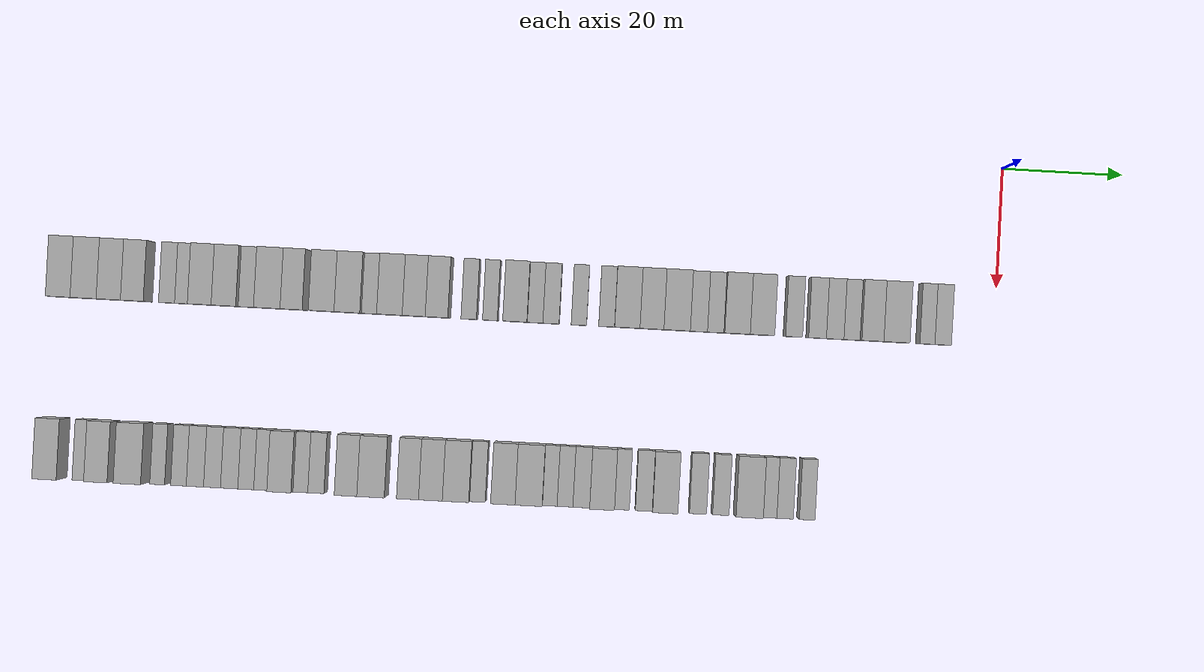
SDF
<sdf version="1.6">
 <world name="default">
  <model name="building_74">
   <static>1</static>
   <pose>25.0000 -154.6725 0 0.000000 0.000000 0.000000</pose>
   <link name="link">
    <pose>0 0 4.50 0 0 0</pose>
    <collision name="collision"><geometry><box><size>10.0000 4.0544 9.0000</size></box></geometry></collision>
    <visual name="visual">
     <cast_shadows>0</cast_shadows>
     <geometry><box><size>10.0000 4.0544 9.0000</size></box></geometry>
     <material>
      <script>
       <uri>model://HANNAS_wall/materials/scripts</uri>
       <uri>model://HANNAS_wall/materials/textures</uri>
       <name>vrc/HANNAS_wall</name>
      </script>
     </material>
    </visual>
   </link>
  </model>
  <model name="building_75">
   <static>1</static>
   <pose>25.0000 -150.5041 0 0.000000 0.000000 0.000000</pose>
   <link name="link">
    <pose>0 0 4.50 0 0 0</pose>
    <collision name="collision"><geometry><box><size>10.0000 4.2825 9.0000</size></box></geometry></collision>
    <visual name="visual">
     <cast_shadows>0</cast_shadows>
     <geometry><box><size>10.0000 4.2825 9.0000</size></box></geometry>
     <material>
      <script>
       <uri>model://HANNAS_wall/materials/scripts</uri>
       <uri>model://HANNAS_wall/materials/textures</uri>
       <name>vrc/HANNAS_wall</name>
      </script>
     </material>
    </visual>
   </link>
  </model>
  <model name="building_76">
   <static>1</static>
   <pose>25.0000 -146.3765 0 0.000000 0.000000 0.000000</pose>
   <link name="link">
    <pose>0 0 4.50 0 0 0</pose>
    <collision name="collision"><geometry><box><size>10.0000 3.9727 9.0000</size></box></geometry></collision>
    <visual name="visual">
     <cast_shadows>0</cast_shadows>
     <geometry><box><size>10.0000 3.9727 9.0000</size></box></geometry>
     <material>
      <script>
       <uri>model://HANNAS_wall/materials/scripts</uri>
       <uri>model://HANNAS_wall/materials/textures</uri>
       <name>vrc/HANNAS_wall</name>
      </script>
     </material>
    </visual>
   </link>
  </model>
  <model name="building_77">
   <static>1</static>
   <pose>25.0000 -142.5174 0 0.000000 0.000000 0.000000</pose>
   <link name="link">
    <pose>0 0 4.50 0 0 0</pose>
    <collision name="collision"><geometry><box><size>10.0000 3.7454 9.0000</size></box></geometry></collision>
    <visual name="visual">
     <cast_shadows>0</cast_shadows>
     <geometry><box><size>10.0000 3.7454 9.0000</size></box></geometry>
     <material>
      <script>
       <uri>model://HANNAS_wall/materials/scripts</uri>
       <uri>model://HANNAS_wall/materials/textures</uri>
       <name>vrc/HANNAS_wall</name>
      </script>
     </material>
    </visual>
   </link>
  </model>
  <model name="building_78">
   <static>1</static>
   <pose>25.0000 -137.3174 0 0.000000 0.000000 0.000000</pose>
   <link name="link">
    <pose>0 0 3.00 0 0 0</pose>
    <collision name="collision"><geometry><box><size>10.0000 2.6546 6.0000</size></box></geometry></collision>
    <visual name="visual">
     <cast_shadows>0</cast_shadows>
     <geometry><box><size>10.0000 2.6546 6.0000</size></box></geometry>
     <material>
      <script>
       <uri>model://HANNAS_wall/materials/scripts</uri>
       <uri>model://HANNAS_wall/materials/textures</uri>
       <name>vrc/HANNAS_wall</name>
      </script>
     </material>
    </visual>
   </link>
  </model>
  <model name="building_79">
   <static>1</static>
   <pose>25.0000 -134.7033 0 0.000000 0.000000 0.000000</pose>
   <link name="link">
    <pose>0 0 3.00 0 0 0</pose>
    <collision name="collision"><geometry><box><size>10.0000 2.5735 6.0000</size></box></geometry></collision>
    <visual name="visual">
     <cast_shadows>0</cast_shadows>
     <geometry><box><size>10.0000 2.5735 6.0000</size></box></geometry>
     <material>
      <script>
       <uri>model://HANNAS_wall/materials/scripts</uri>
       <uri>model://HANNAS_wall/materials/textures</uri>
       <name>vrc/HANNAS_wall</name>
      </script>
     </material>
    </visual>
   </link>
  </model>
  <model name="building_80">
   <static>1</static>
   <pose>25.0000 -131.4703 0 0.000000 0.000000 0.000000</pose>
   <link name="link">
    <pose>0 0 4.50 0 0 0</pose>
    <collision name="collision"><geometry><box><size>10.0000 3.8925 9.0000</size></box></geometry></collision>
    <visual name="visual">
     <cast_shadows>0</cast_shadows>
     <geometry><box><size>10.0000 3.8925 9.0000</size></box></geometry>
     <material>
      <script>
       <uri>model://HANNAS_wall/materials/scripts</uri>
       <uri>model://HANNAS_wall/materials/textures</uri>
       <name>vrc/HANNAS_wall</name>
      </script>
     </material>
    </visual>
   </link>
  </model>
  <model name="building_81">
   <static>1</static>
   <pose>25.0000 -127.5075 0 0.000000 0.000000 0.000000</pose>
   <link name="link">
    <pose>0 0 4.50 0 0 0</pose>
    <collision name="collision"><geometry><box><size>10.0000 4.0332 9.0000</size></box></geometry></collision>
    <visual name="visual">
     <cast_shadows>0</cast_shadows>
     <geometry><box><size>10.0000 4.0332 9.0000</size></box></geometry>
     <material>
      <script>
       <uri>model://HANNAS_wall/materials/scripts</uri>
       <uri>model://HANNAS_wall/materials/textures</uri>
       <name>vrc/HANNAS_wall</name>
      </script>
     </material>
    </visual>
   </link>
  </model>
  <model name="building_82">
   <static>1</static>
   <pose>25.0000 -124.0322 0 0.000000 0.000000 0.000000</pose>
   <link name="link">
    <pose>0 0 3.00 0 0 0</pose>
    <collision name="collision"><geometry><box><size>10.0000 2.9172 6.0000</size></box></geometry></collision>
    <visual name="visual">
     <cast_shadows>0</cast_shadows>
     <geometry><box><size>10.0000 2.9172 6.0000</size></box></geometry>
     <material>
      <script>
       <uri>model://HANNAS_wall/materials/scripts</uri>
       <uri>model://HANNAS_wall/materials/textures</uri>
       <name>vrc/HANNAS_wall</name>
      </script>
     </material>
    </visual>
   </link>
  </model>
  <model name="building_83">
   <static>1</static>
   <pose>25.0000 -120.3986 0 0.000000 0.000000 0.000000</pose>
   <link name="link">
    <pose>0 0 4.50 0 0 0</pose>
    <collision name="collision"><geometry><box><size>10.0000 4.3501 9.0000</size></box></geometry></collision>
    <visual name="visual">
     <cast_shadows>0</cast_shadows>
     <geometry><box><size>10.0000 4.3501 9.0000</size></box></geometry>
     <material>
      <script>
       <uri>model://HANNAS_wall/materials/scripts</uri>
       <uri>model://HANNAS_wall/materials/textures</uri>
       <name>vrc/HANNAS_wall</name>
      </script>
     </material>
    </visual>
   </link>
  </model>
  <model name="building_84">
   <static>1</static>
   <pose>25.0000 -116.4097 0 0.000000 0.000000 0.000000</pose>
   <link name="link">
    <pose>0 0 4.50 0 0 0</pose>
    <collision name="collision"><geometry><box><size>10.0000 3.6276 9.0000</size></box></geometry></collision>
    <visual name="visual">
     <cast_shadows>0</cast_shadows>
     <geometry><box><size>10.0000 3.6276 9.0000</size></box></geometry>
     <material>
      <script>
       <uri>model://HANNAS_wall/materials/scripts</uri>
       <uri>model://HANNAS_wall/materials/textures</uri>
       <name>vrc/HANNAS_wall</name>
      </script>
     </material>
    </visual>
   </link>
  </model>
  <model name="building_85">
   <static>1</static>
   <pose>25.0000 -111.4879 0 0.000000 0.000000 0.000000</pose>
   <link name="link">
    <pose>0 0 4.50 0 0 0</pose>
    <collision name="collision"><geometry><box><size>10.0000 4.2160 9.0000</size></box></geometry></collision>
    <visual name="visual">
     <cast_shadows>0</cast_shadows>
     <geometry><box><size>10.0000 4.2160 9.0000</size></box></geometry>
     <material>
      <script>
       <uri>model://HANNAS_wall/materials/scripts</uri>
       <uri>model://HANNAS_wall/materials/textures</uri>
       <name>vrc/HANNAS_wall</name>
      </script>
     </material>
    </visual>
   </link>
  </model>
  <model name="building_86">
   <static>1</static>
   <pose>25.0000 -107.2674 0 0.000000 0.000000 0.000000</pose>
   <link name="link">
    <pose>0 0 4.50 0 0 0</pose>
    <collision name="collision"><geometry><box><size>10.0000 4.2251 9.0000</size></box></geometry></collision>
    <visual name="visual">
     <cast_shadows>0</cast_shadows>
     <geometry><box><size>10.0000 4.2251 9.0000</size></box></geometry>
     <material>
      <script>
       <uri>model://HANNAS_wall/materials/scripts</uri>
       <uri>model://HANNAS_wall/materials/textures</uri>
       <name>vrc/HANNAS_wall</name>
      </script>
     </material>
    </visual>
   </link>
  </model>
  <model name="building_87">
   <static>1</static>
   <pose>25.0000 -103.7765 0 0.000000 0.000000 0.000000</pose>
   <link name="link">
    <pose>0 0 3.00 0 0 0</pose>
    <collision name="collision"><geometry><box><size>10.0000 2.7565 6.0000</size></box></geometry></collision>
    <visual name="visual">
     <cast_shadows>0</cast_shadows>
     <geometry><box><size>10.0000 2.7565 6.0000</size></box></geometry>
     <material>
      <script>
       <uri>model://HANNAS_wall/materials/scripts</uri>
       <uri>model://HANNAS_wall/materials/textures</uri>
       <name>vrc/HANNAS_wall</name>
      </script>
     </material>
    </visual>
   </link>
  </model>
  <model name="building_88">
   <static>1</static>
   <pose>25.0000 -100.3007 0 0.000000 0.000000 0.000000</pose>
   <link name="link">
    <pose>0 0 4.50 0 0 0</pose>
    <collision name="collision"><geometry><box><size>10.0000 4.1952 9.0000</size></box></geometry></collision>
    <visual name="visual">
     <cast_shadows>0</cast_shadows>
     <geometry><box><size>10.0000 4.1952 9.0000</size></box></geometry>
     <material>
      <script>
       <uri>model://HANNAS_wall/materials/scripts</uri>
       <uri>model://HANNAS_wall/materials/textures</uri>
       <name>vrc/HANNAS_wall</name>
      </script>
     </material>
    </visual>
   </link>
  </model>
  <model name="building_89">
   <static>1</static>
   <pose>25.0000 -96.3168 0 0.000000 0.000000 0.000000</pose>
   <link name="link">
    <pose>0 0 4.50 0 0 0</pose>
    <collision name="collision"><geometry><box><size>10.0000 3.7726 9.0000</size></box></geometry></collision>
    <visual name="visual">
     <cast_shadows>0</cast_shadows>
     <geometry><box><size>10.0000 3.7726 9.0000</size></box></geometry>
     <material>
      <script>
       <uri>model://HANNAS_wall/materials/scripts</uri>
       <uri>model://HANNAS_wall/materials/textures</uri>
       <name>vrc/HANNAS_wall</name>
      </script>
     </material>
    </visual>
   </link>
  </model>
  <model name="building_90">
   <static>1</static>
   <pose>25.0000 -92.5763 0 0.000000 0.000000 0.000000</pose>
   <link name="link">
    <pose>0 0 4.50 0 0 0</pose>
    <collision name="collision"><geometry><box><size>10.0000 3.7083 9.0000</size></box></geometry></collision>
    <visual name="visual">
     <cast_shadows>0</cast_shadows>
     <geometry><box><size>10.0000 3.7083 9.0000</size></box></geometry>
     <material>
      <script>
       <uri>model://HANNAS_wall/materials/scripts</uri>
       <uri>model://HANNAS_wall/materials/textures</uri>
       <name>vrc/HANNAS_wall</name>
      </script>
     </material>
    </visual>
   </link>
  </model>
  <model name="building_91">
   <static>1</static>
   <pose>25.0000 -87.4404 0 0.000000 0.000000 0.000000</pose>
   <link name="link">
    <pose>0 0 3.00 0 0 0</pose>
    <collision name="collision"><geometry><box><size>10.0000 2.5635 6.0000</size></box></geometry></collision>
    <visual name="visual">
     <cast_shadows>0</cast_shadows>
     <geometry><box><size>10.0000 2.5635 6.0000</size></box></geometry>
     <material>
      <script>
       <uri>model://HANNAS_wall/materials/scripts</uri>
       <uri>model://HANNAS_wall/materials/textures</uri>
       <name>vrc/HANNAS_wall</name>
      </script>
     </material>
    </visual>
   </link>
  </model>
  <model name="building_92">
   <static>1</static>
   <pose>25.0000 -83.9411 0 0.000000 0.000000 0.000000</pose>
   <link name="link">
    <pose>0 0 3.00 0 0 0</pose>
    <collision name="collision"><geometry><box><size>10.0000 2.4352 6.0000</size></box></geometry></collision>
    <visual name="visual">
     <cast_shadows>0</cast_shadows>
     <geometry><box><size>10.0000 2.4352 6.0000</size></box></geometry>
     <material>
      <script>
       <uri>model://HANNAS_wall/materials/scripts</uri>
       <uri>model://HANNAS_wall/materials/textures</uri>
       <name>vrc/HANNAS_wall</name>
      </script>
     </material>
    </visual>
   </link>
  </model>
  <model name="building_93">
   <static>1</static>
   <pose>25.0000 -79.7384 0 0.000000 0.000000 0.000000</pose>
   <link name="link">
    <pose>0 0 4.50 0 0 0</pose>
    <collision name="collision"><geometry><box><size>10.0000 3.9701 9.0000</size></box></geometry></collision>
    <visual name="visual">
     <cast_shadows>0</cast_shadows>
     <geometry><box><size>10.0000 3.9701 9.0000</size></box></geometry>
     <material>
      <script>
       <uri>model://HANNAS_wall/materials/scripts</uri>
       <uri>model://HANNAS_wall/materials/textures</uri>
       <name>vrc/HANNAS_wall</name>
      </script>
     </material>
    </visual>
   </link>
  </model>
  <model name="building_94">
   <static>1</static>
   <pose>25.0000 -76.4728 0 0.000000 0.000000 0.000000</pose>
   <link name="link">
    <pose>0 0 3.00 0 0 0</pose>
    <collision name="collision"><geometry><box><size>10.0000 2.5611 6.0000</size></box></geometry></collision>
    <visual name="visual">
     <cast_shadows>0</cast_shadows>
     <geometry><box><size>10.0000 2.5611 6.0000</size></box></geometry>
     <material>
      <script>
       <uri>model://HANNAS_wall/materials/scripts</uri>
       <uri>model://HANNAS_wall/materials/textures</uri>
       <name>vrc/HANNAS_wall</name>
      </script>
     </material>
    </visual>
   </link>
  </model>
  <model name="building_95">
   <static>1</static>
   <pose>25.0000 -73.8569 0 0.000000 0.000000 0.000000</pose>
   <link name="link">
    <pose>0 0 3.00 0 0 0</pose>
    <collision name="collision"><geometry><box><size>10.0000 2.6707 6.0000</size></box></geometry></collision>
    <visual name="visual">
     <cast_shadows>0</cast_shadows>
     <geometry><box><size>10.0000 2.6707 6.0000</size></box></geometry>
     <material>
      <script>
       <uri>model://HANNAS_wall/materials/scripts</uri>
       <uri>model://HANNAS_wall/materials/textures</uri>
       <name>vrc/HANNAS_wall</name>
      </script>
     </material>
    </visual>
   </link>
  </model>
  <model name="building_96">
   <static>1</static>
   <pose>25.0000 -69.2499 0 0.000000 0.000000 0.000000</pose>
   <link name="link">
    <pose>0 0 3.00 0 0 0</pose>
    <collision name="collision"><geometry><box><size>10.0000 2.5434 6.0000</size></box></geometry></collision>
    <visual name="visual">
     <cast_shadows>0</cast_shadows>
     <geometry><box><size>10.0000 2.5434 6.0000</size></box></geometry>
     <material>
      <script>
       <uri>model://HANNAS_wall/materials/scripts</uri>
       <uri>model://HANNAS_wall/materials/textures</uri>
       <name>vrc/HANNAS_wall</name>
      </script>
     </material>
    </visual>
   </link>
  </model>
  <model name="building_97">
   <static>1</static>
   <pose>25.0000 -64.6692 0 0.000000 0.000000 0.000000</pose>
   <link name="link">
    <pose>0 0 3.00 0 0 0</pose>
    <collision name="collision"><geometry><box><size>10.0000 2.6179 6.0000</size></box></geometry></collision>
    <visual name="visual">
     <cast_shadows>0</cast_shadows>
     <geometry><box><size>10.0000 2.6179 6.0000</size></box></geometry>
     <material>
      <script>
       <uri>model://HANNAS_wall/materials/scripts</uri>
       <uri>model://HANNAS_wall/materials/textures</uri>
       <name>vrc/HANNAS_wall</name>
      </script>
     </material>
    </visual>
   </link>
  </model>
  <model name="building_98">
   <static>1</static>
   <pose>25.0000 -61.2834 0 0.000000 0.000000 0.000000</pose>
   <link name="link">
    <pose>0 0 4.50 0 0 0</pose>
    <collision name="collision"><geometry><box><size>10.0000 4.1539 9.0000</size></box></geometry></collision>
    <visual name="visual">
     <cast_shadows>0</cast_shadows>
     <geometry><box><size>10.0000 4.1539 9.0000</size></box></geometry>
     <material>
      <script>
       <uri>model://HANNAS_wall/materials/scripts</uri>
       <uri>model://HANNAS_wall/materials/textures</uri>
       <name>vrc/HANNAS_wall</name>
      </script>
     </material>
    </visual>
   </link>
  </model>
  <model name="building_99">
   <static>1</static>
   <pose>25.0000 -57.2449 0 0.000000 0.000000 0.000000</pose>
   <link name="link">
    <pose>0 0 4.50 0 0 0</pose>
    <collision name="collision"><geometry><box><size>10.0000 3.9230 9.0000</size></box></geometry></collision>
    <visual name="visual">
     <cast_shadows>0</cast_shadows>
     <geometry><box><size>10.0000 3.9230 9.0000</size></box></geometry>
     <material>
      <script>
       <uri>model://HANNAS_wall/materials/scripts</uri>
       <uri>model://HANNAS_wall/materials/textures</uri>
       <name>vrc/HANNAS_wall</name>
      </script>
     </material>
    </visual>
   </link>
  </model>
  <model name="building_100">
   <static>1</static>
   <pose>25.0000 -53.1180 0 0.000000 0.000000 0.000000</pose>
   <link name="link">
    <pose>0 0 4.50 0 0 0</pose>
    <collision name="collision"><geometry><box><size>10.0000 4.3308 9.0000</size></box></geometry></collision>
    <visual name="visual">
     <cast_shadows>0</cast_shadows>
     <geometry><box><size>10.0000 4.3308 9.0000</size></box></geometry>
     <material>
      <script>
       <uri>model://HANNAS_wall/materials/scripts</uri>
       <uri>model://HANNAS_wall/materials/textures</uri>
       <name>vrc/HANNAS_wall</name>
      </script>
     </material>
    </visual>
   </link>
  </model>
  <model name="building_101">
   <static>1</static>
   <pose>25.0000 -49.4828 0 0.000000 0.000000 0.000000</pose>
   <link name="link">
    <pose>0 0 3.00 0 0 0</pose>
    <collision name="collision"><geometry><box><size>10.0000 2.9397 6.0000</size></box></geometry></collision>
    <visual name="visual">
     <cast_shadows>0</cast_shadows>
     <geometry><box><size>10.0000 2.9397 6.0000</size></box></geometry>
     <material>
      <script>
       <uri>model://HANNAS_wall/materials/scripts</uri>
       <uri>model://HANNAS_wall/materials/textures</uri>
       <name>vrc/HANNAS_wall</name>
      </script>
     </material>
    </visual>
   </link>
  </model>
  <model name="building_102">
   <static>1</static>
   <pose>25.0000 -46.6566 0 0.000000 0.000000 0.000000</pose>
   <link name="link">
    <pose>0 0 3.00 0 0 0</pose>
    <collision name="collision"><geometry><box><size>10.0000 2.7127 6.0000</size></box></geometry></collision>
    <visual name="visual">
     <cast_shadows>0</cast_shadows>
     <geometry><box><size>10.0000 2.7127 6.0000</size></box></geometry>
     <material>
      <script>
       <uri>model://HANNAS_wall/materials/scripts</uri>
       <uri>model://HANNAS_wall/materials/textures</uri>
       <name>vrc/HANNAS_wall</name>
      </script>
     </material>
    </visual>
   </link>
  </model>
  <model name="building_103">
   <static>1</static>
   <pose>25.0000 -43.2125 0 0.000000 0.000000 0.000000</pose>
   <link name="link">
    <pose>0 0 4.50 0 0 0</pose>
    <collision name="collision"><geometry><box><size>10.0000 4.1756 9.0000</size></box></geometry></collision>
    <visual name="visual">
     <cast_shadows>0</cast_shadows>
     <geometry><box><size>10.0000 4.1756 9.0000</size></box></geometry>
     <material>
      <script>
       <uri>model://HANNAS_wall/materials/scripts</uri>
       <uri>model://HANNAS_wall/materials/textures</uri>
       <name>vrc/HANNAS_wall</name>
      </script>
     </material>
    </visual>
   </link>
  </model>
  <model name="building_104">
   <static>1</static>
   <pose>25.0000 -39.1202 0 0.000000 0.000000 0.000000</pose>
   <link name="link">
    <pose>0 0 4.50 0 0 0</pose>
    <collision name="collision"><geometry><box><size>10.0000 4.0090 9.0000</size></box></geometry></collision>
    <visual name="visual">
     <cast_shadows>0</cast_shadows>
     <geometry><box><size>10.0000 4.0090 9.0000</size></box></geometry>
     <material>
      <script>
       <uri>model://HANNAS_wall/materials/scripts</uri>
       <uri>model://HANNAS_wall/materials/textures</uri>
       <name>vrc/HANNAS_wall</name>
      </script>
     </material>
    </visual>
   </link>
  </model>
  <model name="building_105">
   <static>1</static>
   <pose>25.0000 -33.7152 0 0.000000 0.000000 0.000000</pose>
   <link name="link">
    <pose>0 0 3.00 0 0 0</pose>
    <collision name="collision"><geometry><box><size>10.0000 2.8009 6.0000</size></box></geometry></collision>
    <visual name="visual">
     <cast_shadows>0</cast_shadows>
     <geometry><box><size>10.0000 2.8009 6.0000</size></box></geometry>
     <material>
      <script>
       <uri>model://HANNAS_wall/materials/scripts</uri>
       <uri>model://HANNAS_wall/materials/textures</uri>
       <name>vrc/HANNAS_wall</name>
      </script>
     </material>
    </visual>
   </link>
  </model>
  <model name="building_106">
   <static>1</static>
   <pose>25.0000 -29.8492 0 0.000000 0.000000 0.000000</pose>
   <link name="link">
    <pose>0 0 3.00 0 0 0</pose>
    <collision name="collision"><geometry><box><size>10.0000 2.9313 6.0000</size></box></geometry></collision>
    <visual name="visual">
     <cast_shadows>0</cast_shadows>
     <geometry><box><size>10.0000 2.9313 6.0000</size></box></geometry>
     <material>
      <script>
       <uri>model://HANNAS_wall/materials/scripts</uri>
       <uri>model://HANNAS_wall/materials/textures</uri>
       <name>vrc/HANNAS_wall</name>
      </script>
     </material>
    </visual>
   </link>
  </model>
  <model name="building_107">
   <static>1</static>
   <pose>25.0000 -26.9336 0 0.000000 0.000000 0.000000</pose>
   <link name="link">
    <pose>0 0 3.00 0 0 0</pose>
    <collision name="collision"><geometry><box><size>10.0000 2.8999 6.0000</size></box></geometry></collision>
    <visual name="visual">
     <cast_shadows>0</cast_shadows>
     <geometry><box><size>10.0000 2.8999 6.0000</size></box></geometry>
     <material>
      <script>
       <uri>model://HANNAS_wall/materials/scripts</uri>
       <uri>model://HANNAS_wall/materials/textures</uri>
       <name>vrc/HANNAS_wall</name>
      </script>
     </material>
    </visual>
   </link>
  </model>
  <model name="building_108">
   <static>1</static>
   <pose>25.0000 -24.1535 0 0.000000 0.000000 0.000000</pose>
   <link name="link">
    <pose>0 0 3.00 0 0 0</pose>
    <collision name="collision"><geometry><box><size>10.0000 2.6601 6.0000</size></box></geometry></collision>
    <visual name="visual">
     <cast_shadows>0</cast_shadows>
     <geometry><box><size>10.0000 2.6601 6.0000</size></box></geometry>
     <material>
      <script>
       <uri>model://HANNAS_wall/materials/scripts</uri>
       <uri>model://HANNAS_wall/materials/textures</uri>
       <name>vrc/HANNAS_wall</name>
      </script>
     </material>
    </visual>
   </link>
  </model>
  <model name="building_109">
   <static>1</static>
   <pose>25.0000 -21.0219 0 0.000000 0.000000 0.000000</pose>
   <link name="link">
    <pose>0 0 4.50 0 0 0</pose>
    <collision name="collision"><geometry><box><size>10.0000 3.6032 9.0000</size></box></geometry></collision>
    <visual name="visual">
     <cast_shadows>0</cast_shadows>
     <geometry><box><size>10.0000 3.6032 9.0000</size></box></geometry>
     <material>
      <script>
       <uri>model://HANNAS_wall/materials/scripts</uri>
       <uri>model://HANNAS_wall/materials/textures</uri>
       <name>vrc/HANNAS_wall</name>
      </script>
     </material>
    </visual>
   </link>
  </model>
  <model name="building_110">
   <static>1</static>
   <pose>25.0000 -17.0821 0 0.000000 0.000000 0.000000</pose>
   <link name="link">
    <pose>0 0 4.50 0 0 0</pose>
    <collision name="collision"><geometry><box><size>10.0000 4.2763 9.0000</size></box></geometry></collision>
    <visual name="visual">
     <cast_shadows>0</cast_shadows>
     <geometry><box><size>10.0000 4.2763 9.0000</size></box></geometry>
     <material>
      <script>
       <uri>model://HANNAS_wall/materials/scripts</uri>
       <uri>model://HANNAS_wall/materials/textures</uri>
       <name>vrc/HANNAS_wall</name>
      </script>
     </material>
    </visual>
   </link>
  </model>
  <model name="building_111">
   <static>1</static>
   <pose>25.0000 -11.7085 0 0.000000 0.000000 0.000000</pose>
   <link name="link">
    <pose>0 0 3.00 0 0 0</pose>
    <collision name="collision"><geometry><box><size>10.0000 2.4709 6.0000</size></box></geometry></collision>
    <visual name="visual">
     <cast_shadows>0</cast_shadows>
     <geometry><box><size>10.0000 2.4709 6.0000</size></box></geometry>
     <material>
      <script>
       <uri>model://HANNAS_wall/materials/scripts</uri>
       <uri>model://HANNAS_wall/materials/textures</uri>
       <name>vrc/HANNAS_wall</name>
      </script>
     </material>
    </visual>
   </link>
  </model>
  <model name="building_112">
   <static>1</static>
   <pose>25.0000 -9.1122 0 0.000000 0.000000 0.000000</pose>
   <link name="link">
    <pose>0 0 3.00 0 0 0</pose>
    <collision name="collision"><geometry><box><size>10.0000 2.7218 6.0000</size></box></geometry></collision>
    <visual name="visual">
     <cast_shadows>0</cast_shadows>
     <geometry><box><size>10.0000 2.7218 6.0000</size></box></geometry>
     <material>
      <script>
       <uri>model://HANNAS_wall/materials/scripts</uri>
       <uri>model://HANNAS_wall/materials/textures</uri>
       <name>vrc/HANNAS_wall</name>
      </script>
     </material>
    </visual>
   </link>
  </model>
  <model name="building_303">
   <static>1</static>
   <pose>55.0000 -155.2801 0 0.000000 0.000000 0.000000</pose>
   <link name="link">
    <pose>0 0 4.50 0 0 0</pose>
    <collision name="collision"><geometry><box><size>10.0000 3.9959 9.0000</size></box></geometry></collision>
    <visual name="visual">
     <cast_shadows>0</cast_shadows>
     <geometry><box><size>10.0000 3.9959 9.0000</size></box></geometry>
     <material>
      <script>
       <uri>model://HANNAS_wall/materials/scripts</uri>
       <uri>model://HANNAS_wall/materials/textures</uri>
       <name>vrc/HANNAS_wall</name>
      </script>
     </material>
    </visual>
   </link>
  </model>
  <model name="building_304">
   <static>1</static>
   <pose>55.0000 -150.0310 0 0.000000 0.000000 0.000000</pose>
   <link name="link">
    <pose>0 0 3.00 0 0 0</pose>
    <collision name="collision"><geometry><box><size>10.0000 2.5023 6.0000</size></box></geometry></collision>
    <visual name="visual">
     <cast_shadows>0</cast_shadows>
     <geometry><box><size>10.0000 2.5023 6.0000</size></box></geometry>
     <material>
      <script>
       <uri>model://HANNAS_wall/materials/scripts</uri>
       <uri>model://HANNAS_wall/materials/textures</uri>
       <name>vrc/HANNAS_wall</name>
      </script>
     </material>
    </visual>
   </link>
  </model>
  <model name="building_305">
   <static>1</static>
   <pose>55.0000 -146.8574 0 0.000000 0.000000 0.000000</pose>
   <link name="link">
    <pose>0 0 4.50 0 0 0</pose>
    <collision name="collision"><geometry><box><size>10.0000 3.8450 9.0000</size></box></geometry></collision>
    <visual name="visual">
     <cast_shadows>0</cast_shadows>
     <geometry><box><size>10.0000 3.8450 9.0000</size></box></geometry>
     <material>
      <script>
       <uri>model://HANNAS_wall/materials/scripts</uri>
       <uri>model://HANNAS_wall/materials/textures</uri>
       <name>vrc/HANNAS_wall</name>
      </script>
     </material>
    </visual>
   </link>
  </model>
  <model name="building_306">
   <static>1</static>
   <pose>55.0000 -141.6898 0 0.000000 0.000000 0.000000</pose>
   <link name="link">
    <pose>0 0 4.50 0 0 0</pose>
    <collision name="collision"><geometry><box><size>10.0000 4.4900 9.0000</size></box></geometry></collision>
    <visual name="visual">
     <cast_shadows>0</cast_shadows>
     <geometry><box><size>10.0000 4.4900 9.0000</size></box></geometry>
     <material>
      <script>
       <uri>model://HANNAS_wall/materials/scripts</uri>
       <uri>model://HANNAS_wall/materials/textures</uri>
       <name>vrc/HANNAS_wall</name>
      </script>
     </material>
    </visual>
   </link>
  </model>
  <model name="building_307">
   <static>1</static>
   <pose>55.0000 -137.2203 0 0.000000 0.000000 0.000000</pose>
   <link name="link">
    <pose>0 0 3.00 0 0 0</pose>
    <collision name="collision"><geometry><box><size>10.0000 2.4489 6.0000</size></box></geometry></collision>
    <visual name="visual">
     <cast_shadows>0</cast_shadows>
     <geometry><box><size>10.0000 2.4489 6.0000</size></box></geometry>
     <material>
      <script>
       <uri>model://HANNAS_wall/materials/scripts</uri>
       <uri>model://HANNAS_wall/materials/textures</uri>
       <name>vrc/HANNAS_wall</name>
      </script>
     </material>
    </visual>
   </link>
  </model>
  <model name="building_308">
   <static>1</static>
   <pose>55.0000 -133.7110 0 0.000000 0.000000 0.000000</pose>
   <link name="link">
    <pose>0 0 3.00 0 0 0</pose>
    <collision name="collision"><geometry><box><size>10.0000 2.5697 6.0000</size></box></geometry></collision>
    <visual name="visual">
     <cast_shadows>0</cast_shadows>
     <geometry><box><size>10.0000 2.5697 6.0000</size></box></geometry>
     <material>
      <script>
       <uri>model://HANNAS_wall/materials/scripts</uri>
       <uri>model://HANNAS_wall/materials/textures</uri>
       <name>vrc/HANNAS_wall</name>
      </script>
     </material>
    </visual>
   </link>
  </model>
  <model name="building_309">
   <static>1</static>
   <pose>55.0000 -130.9970 0 0.000000 0.000000 0.000000</pose>
   <link name="link">
    <pose>0 0 3.00 0 0 0</pose>
    <collision name="collision"><geometry><box><size>10.0000 2.8583 6.0000</size></box></geometry></collision>
    <visual name="visual">
     <cast_shadows>0</cast_shadows>
     <geometry><box><size>10.0000 2.8583 6.0000</size></box></geometry>
     <material>
      <script>
       <uri>model://HANNAS_wall/materials/scripts</uri>
       <uri>model://HANNAS_wall/materials/textures</uri>
       <name>vrc/HANNAS_wall</name>
      </script>
     </material>
    </visual>
   </link>
  </model>
  <model name="building_310">
   <static>1</static>
   <pose>55.0000 -128.1721 0 0.000000 0.000000 0.000000</pose>
   <link name="link">
    <pose>0 0 3.00 0 0 0</pose>
    <collision name="collision"><geometry><box><size>10.0000 2.7915 6.0000</size></box></geometry></collision>
    <visual name="visual">
     <cast_shadows>0</cast_shadows>
     <geometry><box><size>10.0000 2.7915 6.0000</size></box></geometry>
     <material>
      <script>
       <uri>model://HANNAS_wall/materials/scripts</uri>
       <uri>model://HANNAS_wall/materials/textures</uri>
       <name>vrc/HANNAS_wall</name>
      </script>
     </material>
    </visual>
   </link>
  </model>
  <model name="building_311">
   <static>1</static>
   <pose>55.0000 -125.3447 0 0.000000 0.000000 0.000000</pose>
   <link name="link">
    <pose>0 0 3.00 0 0 0</pose>
    <collision name="collision"><geometry><box><size>10.0000 2.8634 6.0000</size></box></geometry></collision>
    <visual name="visual">
     <cast_shadows>0</cast_shadows>
     <geometry><box><size>10.0000 2.8634 6.0000</size></box></geometry>
     <material>
      <script>
       <uri>model://HANNAS_wall/materials/scripts</uri>
       <uri>model://HANNAS_wall/materials/textures</uri>
       <name>vrc/HANNAS_wall</name>
      </script>
     </material>
    </visual>
   </link>
  </model>
  <model name="building_312">
   <static>1</static>
   <pose>55.0000 -122.5998 0 0.000000 0.000000 0.000000</pose>
   <link name="link">
    <pose>0 0 3.00 0 0 0</pose>
    <collision name="collision"><geometry><box><size>10.0000 2.6263 6.0000</size></box></geometry></collision>
    <visual name="visual">
     <cast_shadows>0</cast_shadows>
     <geometry><box><size>10.0000 2.6263 6.0000</size></box></geometry>
     <material>
      <script>
       <uri>model://HANNAS_wall/materials/scripts</uri>
       <uri>model://HANNAS_wall/materials/textures</uri>
       <name>vrc/HANNAS_wall</name>
      </script>
     </material>
    </visual>
   </link>
  </model>
  <model name="building_313">
   <static>1</static>
   <pose>55.0000 -120.0176 0 0.000000 0.000000 0.000000</pose>
   <link name="link">
    <pose>0 0 3.00 0 0 0</pose>
    <collision name="collision"><geometry><box><size>10.0000 2.5381 6.0000</size></box></geometry></collision>
    <visual name="visual">
     <cast_shadows>0</cast_shadows>
     <geometry><box><size>10.0000 2.5381 6.0000</size></box></geometry>
     <material>
      <script>
       <uri>model://HANNAS_wall/materials/scripts</uri>
       <uri>model://HANNAS_wall/materials/textures</uri>
       <name>vrc/HANNAS_wall</name>
      </script>
     </material>
    </visual>
   </link>
  </model>
  <model name="building_314">
   <static>1</static>
   <pose>55.0000 -116.7766 0 0.000000 0.000000 0.000000</pose>
   <link name="link">
    <pose>0 0 4.50 0 0 0</pose>
    <collision name="collision"><geometry><box><size>10.0000 3.9439 9.0000</size></box></geometry></collision>
    <visual name="visual">
     <cast_shadows>0</cast_shadows>
     <geometry><box><size>10.0000 3.9439 9.0000</size></box></geometry>
     <material>
      <script>
       <uri>model://HANNAS_wall/materials/scripts</uri>
       <uri>model://HANNAS_wall/materials/textures</uri>
       <name>vrc/HANNAS_wall</name>
      </script>
     </material>
    </visual>
   </link>
  </model>
  <model name="building_315">
   <static>1</static>
   <pose>55.0000 -113.5862 0 0.000000 0.000000 0.000000</pose>
   <link name="link">
    <pose>0 0 3.00 0 0 0</pose>
    <collision name="collision"><geometry><box><size>10.0000 2.4369 6.0000</size></box></geometry></collision>
    <visual name="visual">
     <cast_shadows>0</cast_shadows>
     <geometry><box><size>10.0000 2.4369 6.0000</size></box></geometry>
     <material>
      <script>
       <uri>model://HANNAS_wall/materials/scripts</uri>
       <uri>model://HANNAS_wall/materials/textures</uri>
       <name>vrc/HANNAS_wall</name>
      </script>
     </material>
    </visual>
   </link>
  </model>
  <model name="building_316">
   <static>1</static>
   <pose>55.0000 -111.0377 0 0.000000 0.000000 0.000000</pose>
   <link name="link">
    <pose>0 0 3.00 0 0 0</pose>
    <collision name="collision"><geometry><box><size>10.0000 2.6600 6.0000</size></box></geometry></collision>
    <visual name="visual">
     <cast_shadows>0</cast_shadows>
     <geometry><box><size>10.0000 2.6600 6.0000</size></box></geometry>
     <material>
      <script>
       <uri>model://HANNAS_wall/materials/scripts</uri>
       <uri>model://HANNAS_wall/materials/textures</uri>
       <name>vrc/HANNAS_wall</name>
      </script>
     </material>
    </visual>
   </link>
  </model>
  <model name="building_317">
   <static>1</static>
   <pose>55.0000 -105.8559 0 0.000000 0.000000 0.000000</pose>
   <link name="link">
    <pose>0 0 4.50 0 0 0</pose>
    <collision name="collision"><geometry><box><size>10.0000 3.7037 9.0000</size></box></geometry></collision>
    <visual name="visual">
     <cast_shadows>0</cast_shadows>
     <geometry><box><size>10.0000 3.7037 9.0000</size></box></geometry>
     <material>
      <script>
       <uri>model://HANNAS_wall/materials/scripts</uri>
       <uri>model://HANNAS_wall/materials/textures</uri>
       <name>vrc/HANNAS_wall</name>
      </script>
     </material>
    </visual>
   </link>
  </model>
  <model name="building_318">
   <static>1</static>
   <pose>55.0000 -101.7549 0 0.000000 0.000000 0.000000</pose>
   <link name="link">
    <pose>0 0 4.50 0 0 0</pose>
    <collision name="collision"><geometry><box><size>10.0000 4.4983 9.0000</size></box></geometry></collision>
    <visual name="visual">
     <cast_shadows>0</cast_shadows>
     <geometry><box><size>10.0000 4.4983 9.0000</size></box></geometry>
     <material>
      <script>
       <uri>model://HANNAS_wall/materials/scripts</uri>
       <uri>model://HANNAS_wall/materials/textures</uri>
       <name>vrc/HANNAS_wall</name>
      </script>
     </material>
    </visual>
   </link>
  </model>
  <model name="building_319">
   <static>1</static>
   <pose>55.0000 -95.6956 0 0.000000 0.000000 0.000000</pose>
   <link name="link">
    <pose>0 0 4.50 0 0 0</pose>
    <collision name="collision"><geometry><box><size>10.0000 3.6202 9.0000</size></box></geometry></collision>
    <visual name="visual">
     <cast_shadows>0</cast_shadows>
     <geometry><box><size>10.0000 3.6202 9.0000</size></box></geometry>
     <material>
      <script>
       <uri>model://HANNAS_wall/materials/scripts</uri>
       <uri>model://HANNAS_wall/materials/textures</uri>
       <name>vrc/HANNAS_wall</name>
      </script>
     </material>
    </visual>
   </link>
  </model>
  <model name="building_320">
   <static>1</static>
   <pose>55.0000 -91.9373 0 0.000000 0.000000 0.000000</pose>
   <link name="link">
    <pose>0 0 4.50 0 0 0</pose>
    <collision name="collision"><geometry><box><size>10.0000 3.8963 9.0000</size></box></geometry></collision>
    <visual name="visual">
     <cast_shadows>0</cast_shadows>
     <geometry><box><size>10.0000 3.8963 9.0000</size></box></geometry>
     <material>
      <script>
       <uri>model://HANNAS_wall/materials/scripts</uri>
       <uri>model://HANNAS_wall/materials/textures</uri>
       <name>vrc/HANNAS_wall</name>
      </script>
     </material>
    </visual>
   </link>
  </model>
  <model name="building_321">
   <static>1</static>
   <pose>55.0000 -87.8243 0 0.000000 0.000000 0.000000</pose>
   <link name="link">
    <pose>0 0 4.50 0 0 0</pose>
    <collision name="collision"><geometry><box><size>10.0000 4.3298 9.0000</size></box></geometry></collision>
    <visual name="visual">
     <cast_shadows>0</cast_shadows>
     <geometry><box><size>10.0000 4.3298 9.0000</size></box></geometry>
     <material>
      <script>
       <uri>model://HANNAS_wall/materials/scripts</uri>
       <uri>model://HANNAS_wall/materials/textures</uri>
       <name>vrc/HANNAS_wall</name>
      </script>
     </material>
    </visual>
   </link>
  </model>
  <model name="building_322">
   <static>1</static>
   <pose>55.0000 -84.3701 0 0.000000 0.000000 0.000000</pose>
   <link name="link">
    <pose>0 0 3.00 0 0 0</pose>
    <collision name="collision"><geometry><box><size>10.0000 2.5785 6.0000</size></box></geometry></collision>
    <visual name="visual">
     <cast_shadows>0</cast_shadows>
     <geometry><box><size>10.0000 2.5785 6.0000</size></box></geometry>
     <material>
      <script>
       <uri>model://HANNAS_wall/materials/scripts</uri>
       <uri>model://HANNAS_wall/materials/textures</uri>
       <name>vrc/HANNAS_wall</name>
      </script>
     </material>
    </visual>
   </link>
  </model>
  <model name="building_323">
   <static>1</static>
   <pose>55.0000 -80.0753 0 0.000000 0.000000 0.000000</pose>
   <link name="link">
    <pose>0 0 4.50 0 0 0</pose>
    <collision name="collision"><geometry><box><size>10.0000 4.0110 9.0000</size></box></geometry></collision>
    <visual name="visual">
     <cast_shadows>0</cast_shadows>
     <geometry><box><size>10.0000 4.0110 9.0000</size></box></geometry>
     <material>
      <script>
       <uri>model://HANNAS_wall/materials/scripts</uri>
       <uri>model://HANNAS_wall/materials/textures</uri>
       <name>vrc/HANNAS_wall</name>
      </script>
     </material>
    </visual>
   </link>
  </model>
  <model name="building_324">
   <static>1</static>
   <pose>55.0000 -75.8467 0 0.000000 0.000000 0.000000</pose>
   <link name="link">
    <pose>0 0 4.50 0 0 0</pose>
    <collision name="collision"><geometry><box><size>10.0000 4.4462 9.0000</size></box></geometry></collision>
    <visual name="visual">
     <cast_shadows>0</cast_shadows>
     <geometry><box><size>10.0000 4.4462 9.0000</size></box></geometry>
     <material>
      <script>
       <uri>model://HANNAS_wall/materials/scripts</uri>
       <uri>model://HANNAS_wall/materials/textures</uri>
       <name>vrc/HANNAS_wall</name>
      </script>
     </material>
    </visual>
   </link>
  </model>
  <model name="building_325">
   <static>1</static>
   <pose>55.0000 -72.4226 0 0.000000 0.000000 0.000000</pose>
   <link name="link">
    <pose>0 0 3.00 0 0 0</pose>
    <collision name="collision"><geometry><box><size>10.0000 2.4021 6.0000</size></box></geometry></collision>
    <visual name="visual">
     <cast_shadows>0</cast_shadows>
     <geometry><box><size>10.0000 2.4021 6.0000</size></box></geometry>
     <material>
      <script>
       <uri>model://HANNAS_wall/materials/scripts</uri>
       <uri>model://HANNAS_wall/materials/textures</uri>
       <name>vrc/HANNAS_wall</name>
      </script>
     </material>
    </visual>
   </link>
  </model>
  <model name="building_326">
   <static>1</static>
   <pose>55.0000 -69.9149 0 0.000000 0.000000 0.000000</pose>
   <link name="link">
    <pose>0 0 3.00 0 0 0</pose>
    <collision name="collision"><geometry><box><size>10.0000 2.6132 6.0000</size></box></geometry></collision>
    <visual name="visual">
     <cast_shadows>0</cast_shadows>
     <geometry><box><size>10.0000 2.6132 6.0000</size></box></geometry>
     <material>
      <script>
       <uri>model://HANNAS_wall/materials/scripts</uri>
       <uri>model://HANNAS_wall/materials/textures</uri>
       <name>vrc/HANNAS_wall</name>
      </script>
     </material>
    </visual>
   </link>
  </model>
  <model name="building_327">
   <static>1</static>
   <pose>55.0000 -67.2231 0 0.000000 0.000000 0.000000</pose>
   <link name="link">
    <pose>0 0 3.00 0 0 0</pose>
    <collision name="collision"><geometry><box><size>10.0000 2.7705 6.0000</size></box></geometry></collision>
    <visual name="visual">
     <cast_shadows>0</cast_shadows>
     <geometry><box><size>10.0000 2.7705 6.0000</size></box></geometry>
     <material>
      <script>
       <uri>model://HANNAS_wall/materials/scripts</uri>
       <uri>model://HANNAS_wall/materials/textures</uri>
       <name>vrc/HANNAS_wall</name>
      </script>
     </material>
    </visual>
   </link>
  </model>
  <model name="building_328">
   <static>1</static>
   <pose>55.0000 -63.7989 0 0.000000 0.000000 0.000000</pose>
   <link name="link">
    <pose>0 0 4.50 0 0 0</pose>
    <collision name="collision"><geometry><box><size>10.0000 4.0781 9.0000</size></box></geometry></collision>
    <visual name="visual">
     <cast_shadows>0</cast_shadows>
     <geometry><box><size>10.0000 4.0781 9.0000</size></box></geometry>
     <material>
      <script>
       <uri>model://HANNAS_wall/materials/scripts</uri>
       <uri>model://HANNAS_wall/materials/textures</uri>
       <name>vrc/HANNAS_wall</name>
      </script>
     </material>
    </visual>
   </link>
  </model>
  <model name="building_329">
   <static>1</static>
   <pose>55.0000 -60.5218 0 0.000000 0.000000 0.000000</pose>
   <link name="link">
    <pose>0 0 3.00 0 0 0</pose>
    <collision name="collision"><geometry><box><size>10.0000 2.4761 6.0000</size></box></geometry></collision>
    <visual name="visual">
     <cast_shadows>0</cast_shadows>
     <geometry><box><size>10.0000 2.4761 6.0000</size></box></geometry>
     <material>
      <script>
       <uri>model://HANNAS_wall/materials/scripts</uri>
       <uri>model://HANNAS_wall/materials/textures</uri>
       <name>vrc/HANNAS_wall</name>
      </script>
     </material>
    </visual>
   </link>
  </model>
  <model name="building_330">
   <static>1</static>
   <pose>55.0000 -56.8905 0 0.000000 0.000000 0.000000</pose>
   <link name="link">
    <pose>0 0 3.00 0 0 0</pose>
    <collision name="collision"><geometry><box><size>10.0000 2.7867 6.0000</size></box></geometry></collision>
    <visual name="visual">
     <cast_shadows>0</cast_shadows>
     <geometry><box><size>10.0000 2.7867 6.0000</size></box></geometry>
     <material>
      <script>
       <uri>model://HANNAS_wall/materials/scripts</uri>
       <uri>model://HANNAS_wall/materials/textures</uri>
       <name>vrc/HANNAS_wall</name>
      </script>
     </material>
    </visual>
   </link>
  </model>
  <model name="building_331">
   <static>1</static>
   <pose>55.0000 -53.4294 0 0.000000 0.000000 0.000000</pose>
   <link name="link">
    <pose>0 0 4.50 0 0 0</pose>
    <collision name="collision"><geometry><box><size>10.0000 4.1354 9.0000</size></box></geometry></collision>
    <visual name="visual">
     <cast_shadows>0</cast_shadows>
     <geometry><box><size>10.0000 4.1354 9.0000</size></box></geometry>
     <material>
      <script>
       <uri>model://HANNAS_wall/materials/scripts</uri>
       <uri>model://HANNAS_wall/materials/textures</uri>
       <name>vrc/HANNAS_wall</name>
      </script>
     </material>
    </visual>
   </link>
  </model>
  <model name="building_332">
   <static>1</static>
   <pose>55.0000 -47.9526 0 0.000000 0.000000 0.000000</pose>
   <link name="link">
    <pose>0 0 3.00 0 0 0</pose>
    <collision name="collision"><geometry><box><size>10.0000 2.8181 6.0000</size></box></geometry></collision>
    <visual name="visual">
     <cast_shadows>0</cast_shadows>
     <geometry><box><size>10.0000 2.8181 6.0000</size></box></geometry>
     <material>
      <script>
       <uri>model://HANNAS_wall/materials/scripts</uri>
       <uri>model://HANNAS_wall/materials/textures</uri>
       <name>vrc/HANNAS_wall</name>
      </script>
     </material>
    </visual>
   </link>
  </model>
  <model name="building_333">
   <static>1</static>
   <pose>55.0000 -44.1865 0 0.000000 0.000000 0.000000</pose>
   <link name="link">
    <pose>0 0 3.00 0 0 0</pose>
    <collision name="collision"><geometry><box><size>10.0000 2.7142 6.0000</size></box></geometry></collision>
    <visual name="visual">
     <cast_shadows>0</cast_shadows>
     <geometry><box><size>10.0000 2.7142 6.0000</size></box></geometry>
     <material>
      <script>
       <uri>model://HANNAS_wall/materials/scripts</uri>
       <uri>model://HANNAS_wall/materials/textures</uri>
       <name>vrc/HANNAS_wall</name>
      </script>
     </material>
    </visual>
   </link>
  </model>
  <model name="building_334">
   <static>1</static>
   <pose>55.0000 -39.5932 0 0.000000 0.000000 0.000000</pose>
   <link name="link">
    <pose>0 0 4.50 0 0 0</pose>
    <collision name="collision"><geometry><box><size>10.0000 4.4724 9.0000</size></box></geometry></collision>
    <visual name="visual">
     <cast_shadows>0</cast_shadows>
     <geometry><box><size>10.0000 4.4724 9.0000</size></box></geometry>
     <material>
      <script>
       <uri>model://HANNAS_wall/materials/scripts</uri>
       <uri>model://HANNAS_wall/materials/textures</uri>
       <name>vrc/HANNAS_wall</name>
      </script>
     </material>
    </visual>
   </link>
  </model>
  <model name="building_335">
   <static>1</static>
   <pose>55.0000 -36.1485 0 0.000000 0.000000 0.000000</pose>
   <link name="link">
    <pose>0 0 3.00 0 0 0</pose>
    <collision name="collision"><geometry><box><size>10.0000 2.4168 6.0000</size></box></geometry></collision>
    <visual name="visual">
     <cast_shadows>0</cast_shadows>
     <geometry><box><size>10.0000 2.4168 6.0000</size></box></geometry>
     <material>
      <script>
       <uri>model://HANNAS_wall/materials/scripts</uri>
       <uri>model://HANNAS_wall/materials/textures</uri>
       <name>vrc/HANNAS_wall</name>
      </script>
     </material>
    </visual>
   </link>
  </model>
  <model name="building_336">
   <static>1</static>
   <pose>55.0000 -33.5812 0 0.000000 0.000000 0.000000</pose>
   <link name="link">
    <pose>0 0 3.00 0 0 0</pose>
    <collision name="collision"><geometry><box><size>10.0000 2.7178 6.0000</size></box></geometry></collision>
    <visual name="visual">
     <cast_shadows>0</cast_shadows>
     <geometry><box><size>10.0000 2.7178 6.0000</size></box></geometry>
     <material>
      <script>
       <uri>model://HANNAS_wall/materials/scripts</uri>
       <uri>model://HANNAS_wall/materials/textures</uri>
       <name>vrc/HANNAS_wall</name>
      </script>
     </material>
    </visual>
   </link>
  </model>
  <model name="building_337">
   <static>1</static>
   <pose>55.0000 -29.9327 0 0.000000 0.000000 0.000000</pose>
   <link name="link">
    <pose>0 0 3.00 0 0 0</pose>
    <collision name="collision"><geometry><box><size>10.0000 2.5793 6.0000</size></box></geometry></collision>
    <visual name="visual">
     <cast_shadows>0</cast_shadows>
     <geometry><box><size>10.0000 2.5793 6.0000</size></box></geometry>
     <material>
      <script>
       <uri>model://HANNAS_wall/materials/scripts</uri>
       <uri>model://HANNAS_wall/materials/textures</uri>
       <name>vrc/HANNAS_wall</name>
      </script>
     </material>
    </visual>
   </link>
  </model>
 </world>
</sdf>
